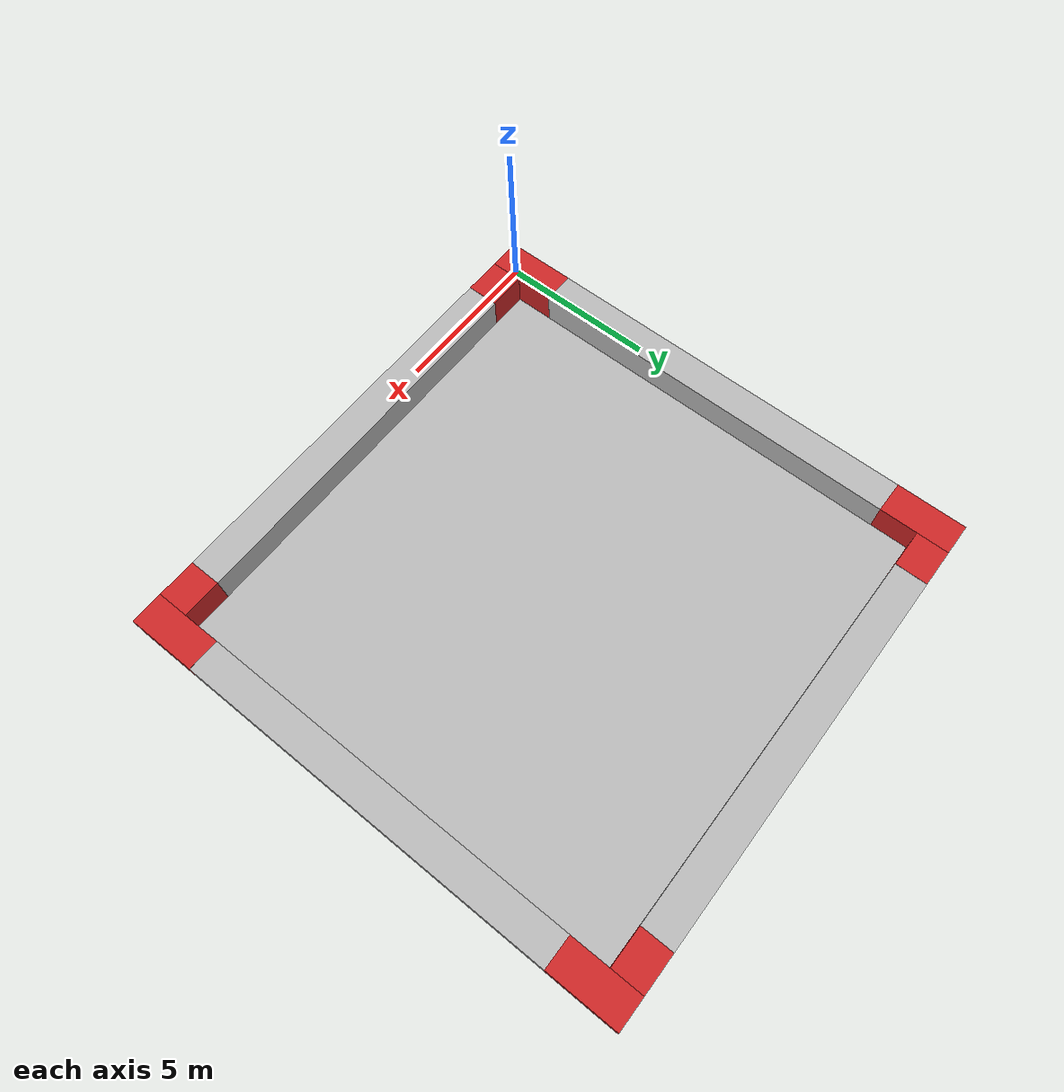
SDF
<sdf version="1.6">
 <world name="default">
  <light name="sun" type="directional">
   <pose>-11.8208 -19.3843 17.2198 0 -0 0</pose>
   <diffuse>0.7 0.7 0.7 1</diffuse>
   <specular>0.2 0.2 0.2 1</specular>
   <attenuation>
    <range>1000</range>
    <constant>0.9</constant>
    <linear>0.01</linear>
    <quadratic>0.001</quadratic>
   </attenuation>
   <direction>0.3698 0.4 -0.5</direction>
  </light>
  <scene><ambient>0.4 0.4 0.4 1</ambient><background>0.7 0.7 0.7 1</background><shadows>0</shadows></scene>
  <gravity>0 0 -9.8</gravity>
  <magnetic_field>6e-06 2.3e-05 -4.2e-05</magnetic_field>
  <atmosphere type="adiabatic"/>
  <physics name="default_physics" default="0" type="ode">
   <max_step_size>0.001</max_step_size>
   <real_time_update_rate>0.0</real_time_update_rate>
  </physics>
  <spherical_coordinates>
   <surface_model>EARTH_WGS84</surface_model>
   <latitude_deg>0</latitude_deg>
   <longitude_deg>0</longitude_deg>
   <elevation>0</elevation>
   <heading_deg>0</heading_deg>
  </spherical_coordinates>
  <model name="box_0">
   <pose>8 8 0 0 -0 0</pose>
   <static>1</static>
   <link name="link">
    <inertial>
     <mass>1</mass>
     <inertia><ixx>1</ixx><ixy>0</ixy><ixz>0</ixz><iyy>1</iyy><iyz>0</iyz><izz>1</izz></inertia>
    </inertial>
    <collision name="collision">
     <geometry><box><size>16 16 0.01</size></box></geometry>
     <laser_retro>7.15378e+22</laser_retro>
    </collision>
    <visual name="visual">
     <geometry><box><size>16 16 0.01</size></box></geometry>
     <material>
      <script><uri>file://media/materials/scripts/gazebo.material</uri><name>Gazebo/GroundMaze</name></script>
     </material>
    </visual>
    <gravity>0</gravity>
   </link>
  </model>
  <model name="box_1">
   <pose>8 0.3 0.5 0 -0 0</pose>
   <static>1</static>
   <link name="link">
    <inertial>
     <mass>1</mass>
     <inertia><ixx>1</ixx><ixy>0</ixy><ixz>0</ixz><iyy>1</iyy><iyz>0</iyz><izz>1</izz></inertia>
    </inertial>
    <collision name="collision"><geometry><box><size>12 1 1</size></box></geometry></collision>
    <visual name="visual">
     <geometry><box><size>12 1 1</size></box></geometry>
     <material>
      <script><uri>file://media/materials/scripts/gazebo.material</uri><name>Gazebo/WallMaze</name></script>
     </material>
    </visual>
   </link>
  </model>
  <model name="box_2">
   <pose>8 15.7 0.5 0 -0 0</pose>
   <static>1</static>
   <link name="link">
    <inertial>
     <mass>1</mass>
     <inertia><ixx>1</ixx><ixy>0</ixy><ixz>0</ixz><iyy>1</iyy><iyz>0</iyz><izz>1</izz></inertia>
    </inertial>
    <collision name="collision"><geometry><box><size>12 1 1</size></box></geometry></collision>
    <visual name="visual">
     <geometry><box><size>12 1 1</size></box></geometry>
     <material>
      <script><uri>file://media/materials/scripts/gazebo.material</uri><name>Gazebo/WallMaze</name></script>
     </material>
    </visual>
   </link>
  </model>
  <model name="box_3">
   <pose>15.7 8 0.5 0 -0 0</pose>
   <static>1</static>
   <link name="link">
    <inertial>
     <mass>1</mass>
     <inertia><ixx>1</ixx><ixy>0</ixy><ixz>0</ixz><iyy>1</iyy><iyz>0</iyz><izz>1</izz></inertia>
    </inertial>
    <collision name="collision"><geometry><box><size>1 12 1</size></box></geometry></collision>
    <visual name="visual">
     <geometry><box><size>1 12 1</size></box></geometry>
     <material>
      <script><uri>file://media/materials/scripts/gazebo.material</uri><name>Gazebo/WallMaze</name></script>
     </material>
    </visual>
   </link>
  </model>
  <model name="box_4">
   <pose>0.3 8 0.5 0 -0 0</pose>
   <static>1</static>
   <link name="link">
    <inertial>
     <mass>1</mass>
     <inertia><ixx>1</ixx><ixy>0</ixy><ixz>0</ixz><iyy>1</iyy><iyz>0</iyz><izz>1</izz></inertia>
    </inertial>
    <collision name="collision"><geometry><box><size>1 12 1</size></box></geometry></collision>
    <visual name="visual">
     <geometry><box><size>1 12 1</size></box></geometry>
     <material>
      <script><uri>file://media/materials/scripts/gazebo.material</uri><name>Gazebo/WallMaze</name></script>
     </material>
    </visual>
   </link>
  </model>
  <model name="box_5">
   <pose>14.6 0.299996 0.50499 0 -0 0</pose>
   <link name="link">
    <inertial>
     <mass>1</mass>
     <inertia><ixx>1</ixx><ixy>0</ixy><ixz>0</ixz><iyy>1</iyy><iyz>0</iyz><izz>1</izz></inertia>
    </inertial>
    <collision name="collision">
     <geometry><box><size>1.2 1 1</size></box></geometry>
     <laser_retro>2.46629e-43</laser_retro>
    </collision>
    <visual name="visual">
     <geometry><box><size>1.2 1 1</size></box></geometry>
     <material>
      <script><uri>file://media/materials/scripts/gazebo.material</uri><name>Gazebo/Red</name></script>
     </material>
    </visual>
   </link>
  </model>
  <model name="box_5_0">
   <pose>14.6 15.7 0.505 0 -1e-06 0</pose>
   <link name="link">
    <inertial>
     <mass>1</mass>
     <inertia><ixx>1</ixx><ixy>0</ixy><ixz>0</ixz><iyy>1</iyy><iyz>0</iyz><izz>1</izz></inertia>
    </inertial>
    <collision name="collision">
     <geometry><box><size>1.2 1 1</size></box></geometry>
     <laser_retro>3.96067e-14</laser_retro>
    </collision>
    <visual name="visual">
     <geometry><box><size>1.2 1 1</size></box></geometry>
     <material>
      <script><uri>file://media/materials/scripts/gazebo.material</uri><name>Gazebo/Red</name></script>
     </material>
    </visual>
   </link>
  </model>
  <model name="box_5_0_0">
   <pose>1.4 0.299999 0.504991 0 0 -1e-06</pose>
   <link name="link">
    <inertial>
     <mass>1</mass>
     <inertia><ixx>1</ixx><ixy>0</ixy><ixz>0</ixz><iyy>1</iyy><iyz>0</iyz><izz>1</izz></inertia>
    </inertial>
    <collision name="collision">
     <geometry><box><size>1.2 1 1</size></box></geometry>
     <laser_retro>6.71475e-22</laser_retro>
    </collision>
    <visual name="visual">
     <geometry><box><size>1.2 1 1</size></box></geometry>
     <material>
      <script><uri>file://media/materials/scripts/gazebo.material</uri><name>Gazebo/Red</name></script>
     </material>
    </visual>
   </link>
  </model>
  <model name="box_5_0_0_0">
   <pose>1.4 15.7 0.504999 0 -0 1e-06</pose>
   <link name="link">
    <inertial>
     <mass>1</mass>
     <inertia><ixx>1</ixx><ixy>0</ixy><ixz>0</ixz><iyy>1</iyy><iyz>0</iyz><izz>1</izz></inertia>
    </inertial>
    <collision name="collision">
     <geometry><box><size>1.2 1 1</size></box></geometry>
     <laser_retro>1.10638e+30</laser_retro>
    </collision>
    <visual name="visual">
     <geometry><box><size>1.2 1 1</size></box></geometry>
     <material>
      <script><uri>file://media/materials/scripts/gazebo.material</uri><name>Gazebo/Red</name></script>
     </material>
    </visual>
   </link>
  </model>
  <model name="box_5_0_1">
   <pose>15.7 15.1 0.505 0 -0 0</pose>
   <link name="link">
    <inertial>
     <mass>1</mass>
     <inertia><ixx>1</ixx><ixy>0</ixy><ixz>0</ixz><iyy>1</iyy><iyz>0</iyz><izz>1</izz></inertia>
    </inertial>
    <collision name="collision">
     <geometry><box><size>1 2.2 1</size></box></geometry>
     <laser_retro>1.7444e+28</laser_retro>
    </collision>
    <visual name="visual">
     <geometry><box><size>1 2.2 1</size></box></geometry>
     <material>
      <script><uri>file://media/materials/scripts/gazebo.material</uri><name>Gazebo/Red</name></script>
     </material>
    </visual>
   </link>
  </model>
  <model name="box_5_1">
   <pose>15.7 0.899999 0.50499 0 -0 1e-06</pose>
   <link name="link">
    <inertial>
     <mass>1</mass>
     <inertia><ixx>1</ixx><ixy>0</ixy><ixz>0</ixz><iyy>1</iyy><iyz>0</iyz><izz>1</izz></inertia>
    </inertial>
    <collision name="collision">
     <geometry><box><size>1 2.2 1</size></box></geometry>
     <laser_retro>1.07658e+21</laser_retro>
    </collision>
    <visual name="visual">
     <geometry><box><size>1 2.2 1</size></box></geometry>
     <material>
      <script><uri>file://media/materials/scripts/gazebo.material</uri><name>Gazebo/Red</name></script>
     </material>
    </visual>
   </link>
  </model>
  <model name="box_5_0_0_1">
   <pose>0.299998 0.899999 0.50499 0 -0 0</pose>
   <link name="link">
    <inertial>
     <mass>1</mass>
     <inertia><ixx>1</ixx><ixy>0</ixy><ixz>0</ixz><iyy>1</iyy><iyz>0</iyz><izz>1</izz></inertia>
    </inertial>
    <collision name="collision">
     <geometry><box><size>1 2.2 1</size></box></geometry>
     <laser_retro>4.03574e-43</laser_retro>
    </collision>
    <visual name="visual">
     <geometry><box><size>1 2.2 1</size></box></geometry>
     <material>
      <script><uri>file://media/materials/scripts/gazebo.material</uri><name>Gazebo/Red</name></script>
     </material>
    </visual>
   </link>
  </model>
  <model name="box_5_0_0_0_0">
   <pose>0.299995 15.1 0.505001 0 -3e-06 4e-06</pose>
   <link name="link">
    <inertial>
     <mass>1</mass>
     <inertia><ixx>1</ixx><ixy>0</ixy><ixz>0</ixz><iyy>1</iyy><iyz>0</iyz><izz>1</izz></inertia>
    </inertial>
    <collision name="collision">
     <geometry><box><size>1 2.2 1</size></box></geometry>
     <laser_retro>7.25097e-10</laser_retro>
    </collision>
    <visual name="visual">
     <geometry><box><size>1 2.2 1</size></box></geometry>
     <material>
      <script><uri>file://media/materials/scripts/gazebo.material</uri><name>Gazebo/Red</name></script>
     </material>
    </visual>
   </link>
  </model>
 </world>
</sdf>
